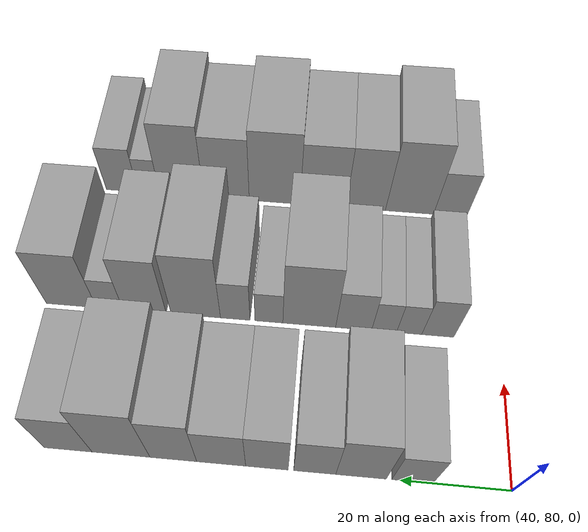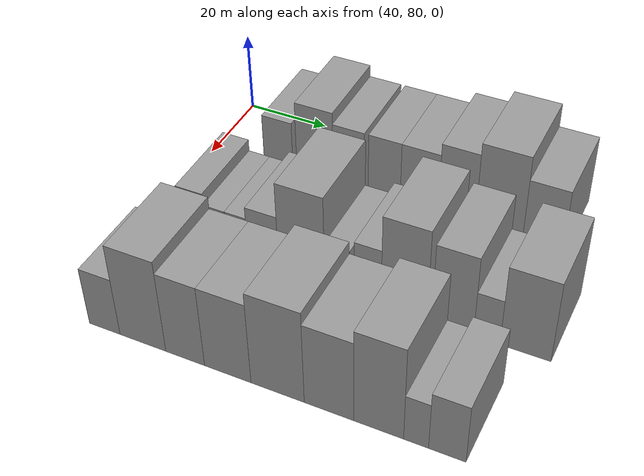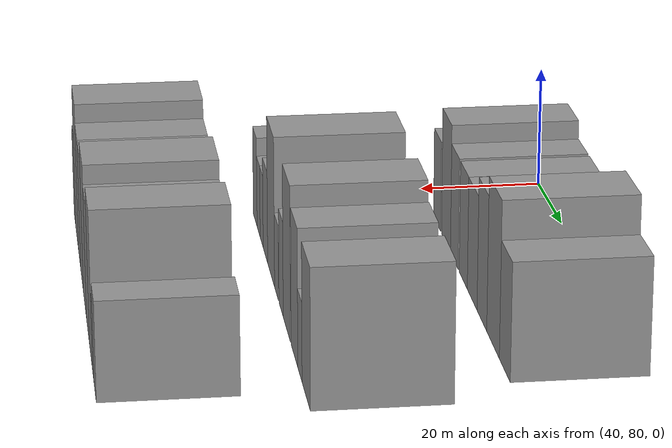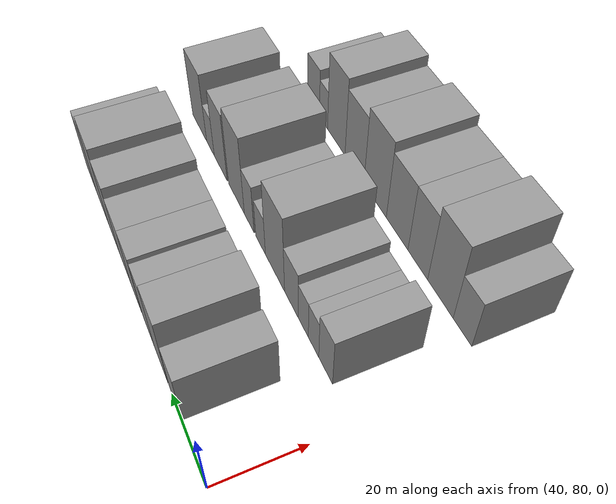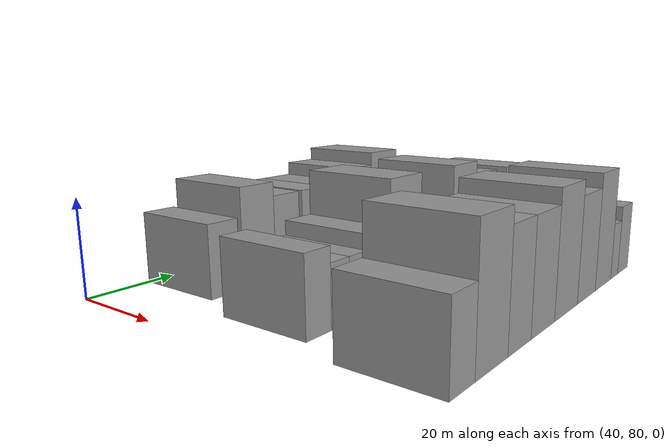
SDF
<sdf version="1.6">
 <world name="default">
  <model name="building_44">
   <static>1</static>
   <pose>50.0000 97.7844 0 0.000000 0.000000 0.000000</pose>
   <link name="link">
    <pose>0 0 7.50 0 0 0</pose>
    <collision name="collision"><geometry><box><size>20.0000 7.3913 15.0000</size></box></geometry></collision>
    <visual name="visual">
     <cast_shadows>0</cast_shadows>
     <geometry><box><size>20.0000 7.3913 15.0000</size></box></geometry>
     <material>
      <script>
       <uri>model://grey_wall/materials/scripts</uri>
       <uri>model://grey_wall/materials/textures</uri>
       <name>vrc/grey_wall</name>
      </script>
     </material>
    </visual>
   </link>
  </model>
  <model name="building_45">
   <static>1</static>
   <pose>50.0000 107.0497 0 0.000000 0.000000 0.000000</pose>
   <link name="link">
    <pose>0 0 10.50 0 0 0</pose>
    <collision name="collision"><geometry><box><size>20.0000 9.1391 21.0000</size></box></geometry></collision>
    <visual name="visual">
     <cast_shadows>0</cast_shadows>
     <geometry><box><size>20.0000 9.1391 21.0000</size></box></geometry>
     <material>
      <script>
       <uri>model://grey_wall/materials/scripts</uri>
       <uri>model://grey_wall/materials/textures</uri>
       <name>vrc/grey_wall</name>
      </script>
     </material>
    </visual>
   </link>
  </model>
  <model name="building_46">
   <static>1</static>
   <pose>50.0000 115.4404 0 0.000000 0.000000 0.000000</pose>
   <link name="link">
    <pose>0 0 9.00 0 0 0</pose>
    <collision name="collision"><geometry><box><size>20.0000 7.6424 18.0000</size></box></geometry></collision>
    <visual name="visual">
     <cast_shadows>0</cast_shadows>
     <geometry><box><size>20.0000 7.6424 18.0000</size></box></geometry>
     <material>
      <script>
       <uri>model://grey_wall/materials/scripts</uri>
       <uri>model://grey_wall/materials/textures</uri>
       <name>vrc/grey_wall</name>
      </script>
     </material>
    </visual>
   </link>
  </model>
  <model name="building_47">
   <static>1</static>
   <pose>50.0000 124.1388 0 0.000000 0.000000 0.000000</pose>
   <link name="link">
    <pose>0 0 9.00 0 0 0</pose>
    <collision name="collision"><geometry><box><size>20.0000 7.7543 18.0000</size></box></geometry></collision>
    <visual name="visual">
     <cast_shadows>0</cast_shadows>
     <geometry><box><size>20.0000 7.7543 18.0000</size></box></geometry>
     <material>
      <script>
       <uri>model://grey_wall/materials/scripts</uri>
       <uri>model://grey_wall/materials/textures</uri>
       <name>vrc/grey_wall</name>
      </script>
     </material>
    </visual>
   </link>
  </model>
  <model name="building_48">
   <static>1</static>
   <pose>50.0000 132.5141 0 0.000000 0.000000 0.000000</pose>
   <link name="link">
    <pose>0 0 9.00 0 0 0</pose>
    <collision name="collision"><geometry><box><size>20.0000 8.9964 18.0000</size></box></geometry></collision>
    <visual name="visual">
     <cast_shadows>0</cast_shadows>
     <geometry><box><size>20.0000 8.9964 18.0000</size></box></geometry>
     <material>
      <script>
       <uri>model://grey_wall/materials/scripts</uri>
       <uri>model://grey_wall/materials/textures</uri>
       <name>vrc/grey_wall</name>
      </script>
     </material>
    </visual>
   </link>
  </model>
  <model name="building_49">
   <static>1</static>
   <pose>50.0000 141.3249 0 0.000000 0.000000 0.000000</pose>
   <link name="link">
    <pose>0 0 10.50 0 0 0</pose>
    <collision name="collision"><geometry><box><size>20.0000 8.6251 21.0000</size></box></geometry></collision>
    <visual name="visual">
     <cast_shadows>0</cast_shadows>
     <geometry><box><size>20.0000 8.6251 21.0000</size></box></geometry>
     <material>
      <script>
       <uri>model://grey_wall/materials/scripts</uri>
       <uri>model://grey_wall/materials/textures</uri>
       <name>vrc/grey_wall</name>
      </script>
     </material>
    </visual>
   </link>
  </model>
  <model name="building_50">
   <static>1</static>
   <pose>50.0000 151.0222 0 0.000000 0.000000 0.000000</pose>
   <link name="link">
    <pose>0 0 12.00 0 0 0</pose>
    <collision name="collision"><geometry><box><size>20.0000 10.7695 24.0000</size></box></geometry></collision>
    <visual name="visual">
     <cast_shadows>0</cast_shadows>
     <geometry><box><size>20.0000 10.7695 24.0000</size></box></geometry>
     <material>
      <script>
       <uri>model://grey_wall/materials/scripts</uri>
       <uri>model://grey_wall/materials/textures</uri>
       <name>vrc/grey_wall</name>
      </script>
     </material>
    </visual>
   </link>
  </model>
  <model name="building_51">
   <static>1</static>
   <pose>50.0000 160.8869 0 0.000000 0.000000 0.000000</pose>
   <link name="link">
    <pose>0 0 9.00 0 0 0</pose>
    <collision name="collision"><geometry><box><size>20.0000 8.9600 18.0000</size></box></geometry></collision>
    <visual name="visual">
     <cast_shadows>0</cast_shadows>
     <geometry><box><size>20.0000 8.9600 18.0000</size></box></geometry>
     <material>
      <script>
       <uri>model://grey_wall/materials/scripts</uri>
       <uri>model://grey_wall/materials/textures</uri>
       <name>vrc/grey_wall</name>
      </script>
     </material>
    </visual>
   </link>
  </model>
  <model name="building_118">
   <static>1</static>
   <pose>79.0000 92.5421 0 0.000000 0.000000 0.000000</pose>
   <link name="link">
    <pose>0 0 7.50 0 0 0</pose>
    <collision name="collision"><geometry><box><size>20.0000 6.3684 15.0000</size></box></geometry></collision>
    <visual name="visual">
     <cast_shadows>0</cast_shadows>
     <geometry><box><size>20.0000 6.3684 15.0000</size></box></geometry>
     <material>
      <script>
       <uri>model://grey_wall/materials/scripts</uri>
       <uri>model://grey_wall/materials/textures</uri>
       <name>vrc/grey_wall</name>
      </script>
     </material>
    </visual>
   </link>
  </model>
  <model name="building_119">
   <static>1</static>
   <pose>79.0000 98.2413 0 0.000000 0.000000 0.000000</pose>
   <link name="link">
    <pose>0 0 6.00 0 0 0</pose>
    <collision name="collision"><geometry><box><size>20.0000 5.0301 12.0000</size></box></geometry></collision>
    <visual name="visual">
     <cast_shadows>0</cast_shadows>
     <geometry><box><size>20.0000 5.0301 12.0000</size></box></geometry>
     <material>
      <script>
       <uri>model://grey_wall/materials/scripts</uri>
       <uri>model://grey_wall/materials/textures</uri>
       <name>vrc/grey_wall</name>
      </script>
     </material>
    </visual>
   </link>
  </model>
  <model name="building_120">
   <static>1</static>
   <pose>79.0000 103.2448 0 0.000000 0.000000 0.000000</pose>
   <link name="link">
    <pose>0 0 6.00 0 0 0</pose>
    <collision name="collision"><geometry><box><size>20.0000 4.9769 12.0000</size></box></geometry></collision>
    <visual name="visual">
     <cast_shadows>0</cast_shadows>
     <geometry><box><size>20.0000 4.9769 12.0000</size></box></geometry>
     <material>
      <script>
       <uri>model://grey_wall/materials/scripts</uri>
       <uri>model://grey_wall/materials/textures</uri>
       <name>vrc/grey_wall</name>
      </script>
     </material>
    </visual>
   </link>
  </model>
  <model name="building_121">
   <static>1</static>
   <pose>79.0000 109.3483 0 0.000000 0.000000 0.000000</pose>
   <link name="link">
    <pose>0 0 7.50 0 0 0</pose>
    <collision name="collision"><geometry><box><size>20.0000 7.2300 15.0000</size></box></geometry></collision>
    <visual name="visual">
     <cast_shadows>0</cast_shadows>
     <geometry><box><size>20.0000 7.2300 15.0000</size></box></geometry>
     <material>
      <script>
       <uri>model://grey_wall/materials/scripts</uri>
       <uri>model://grey_wall/materials/textures</uri>
       <name>vrc/grey_wall</name>
      </script>
     </material>
    </visual>
   </link>
  </model>
  <model name="building_122">
   <static>1</static>
   <pose>79.0000 118.2771 0 0.000000 0.000000 0.000000</pose>
   <link name="link">
    <pose>0 0 12.00 0 0 0</pose>
    <collision name="collision"><geometry><box><size>20.0000 10.6277 24.0000</size></box></geometry></collision>
    <visual name="visual">
     <cast_shadows>0</cast_shadows>
     <geometry><box><size>20.0000 10.6277 24.0000</size></box></geometry>
     <material>
      <script>
       <uri>model://grey_wall/materials/scripts</uri>
       <uri>model://grey_wall/materials/textures</uri>
       <name>vrc/grey_wall</name>
      </script>
     </material>
    </visual>
   </link>
  </model>
  <model name="building_123">
   <static>1</static>
   <pose>79.0000 126.4163 0 0.000000 0.000000 0.000000</pose>
   <link name="link">
    <pose>0 0 6.00 0 0 0</pose>
    <collision name="collision"><geometry><box><size>20.0000 5.6508 12.0000</size></box></geometry></collision>
    <visual name="visual">
     <cast_shadows>0</cast_shadows>
     <geometry><box><size>20.0000 5.6508 12.0000</size></box></geometry>
     <material>
      <script>
       <uri>model://grey_wall/materials/scripts</uri>
       <uri>model://grey_wall/materials/textures</uri>
       <name>vrc/grey_wall</name>
      </script>
     </material>
    </visual>
   </link>
  </model>
  <model name="building_124">
   <static>1</static>
   <pose>79.0000 133.2450 0 0.000000 0.000000 0.000000</pose>
   <link name="link">
    <pose>0 0 7.50 0 0 0</pose>
    <collision name="collision"><geometry><box><size>20.0000 6.0065 15.0000</size></box></geometry></collision>
    <visual name="visual">
     <cast_shadows>0</cast_shadows>
     <geometry><box><size>20.0000 6.0065 15.0000</size></box></geometry>
     <material>
      <script>
       <uri>model://grey_wall/materials/scripts</uri>
       <uri>model://grey_wall/materials/textures</uri>
       <name>vrc/grey_wall</name>
      </script>
     </material>
    </visual>
   </link>
  </model>
  <model name="building_125">
   <static>1</static>
   <pose>79.0000 141.2946 0 0.000000 0.000000 0.000000</pose>
   <link name="link">
    <pose>0 0 12.00 0 0 0</pose>
    <collision name="collision"><geometry><box><size>20.0000 10.0927 24.0000</size></box></geometry></collision>
    <visual name="visual">
     <cast_shadows>0</cast_shadows>
     <geometry><box><size>20.0000 10.0927 24.0000</size></box></geometry>
     <material>
      <script>
       <uri>model://grey_wall/materials/scripts</uri>
       <uri>model://grey_wall/materials/textures</uri>
       <name>vrc/grey_wall</name>
      </script>
     </material>
    </visual>
   </link>
  </model>
  <model name="building_126">
   <static>1</static>
   <pose>79.0000 151.7759 0 0.000000 0.000000 0.000000</pose>
   <link name="link">
    <pose>0 0 10.50 0 0 0</pose>
    <collision name="collision"><geometry><box><size>20.0000 8.8700 21.0000</size></box></geometry></collision>
    <visual name="visual">
     <cast_shadows>0</cast_shadows>
     <geometry><box><size>20.0000 8.8700 21.0000</size></box></geometry>
     <material>
      <script>
       <uri>model://grey_wall/materials/scripts</uri>
       <uri>model://grey_wall/materials/textures</uri>
       <name>vrc/grey_wall</name>
      </script>
     </material>
    </visual>
   </link>
  </model>
  <model name="building_127">
   <static>1</static>
   <pose>79.0000 158.9594 0 0.000000 0.000000 0.000000</pose>
   <link name="link">
    <pose>0 0 6.00 0 0 0</pose>
    <collision name="collision"><geometry><box><size>20.0000 5.4968 12.0000</size></box></geometry></collision>
    <visual name="visual">
     <cast_shadows>0</cast_shadows>
     <geometry><box><size>20.0000 5.4968 12.0000</size></box></geometry>
     <material>
      <script>
       <uri>model://grey_wall/materials/scripts</uri>
       <uri>model://grey_wall/materials/textures</uri>
       <name>vrc/grey_wall</name>
      </script>
     </material>
    </visual>
   </link>
  </model>
  <model name="building_128">
   <static>1</static>
   <pose>79.0000 166.9218 0 0.000000 0.000000 0.000000</pose>
   <link name="link">
    <pose>0 0 10.50 0 0 0</pose>
    <collision name="collision"><geometry><box><size>20.0000 10.4281 21.0000</size></box></geometry></collision>
    <visual name="visual">
     <cast_shadows>0</cast_shadows>
     <geometry><box><size>20.0000 10.4281 21.0000</size></box></geometry>
     <material>
      <script>
       <uri>model://grey_wall/materials/scripts</uri>
       <uri>model://grey_wall/materials/textures</uri>
       <name>vrc/grey_wall</name>
      </script>
     </material>
    </visual>
   </link>
  </model>
  <model name="building_194">
   <static>1</static>
   <pose>108.0000 89.1507 0 0.000000 0.000000 0.000000</pose>
   <link name="link">
    <pose>0 0 7.50 0 0 0</pose>
    <collision name="collision"><geometry><box><size>20.0000 7.2178 15.0000</size></box></geometry></collision>
    <visual name="visual">
     <cast_shadows>0</cast_shadows>
     <geometry><box><size>20.0000 7.2178 15.0000</size></box></geometry>
     <material>
      <script>
       <uri>model://grey_wall/materials/scripts</uri>
       <uri>model://grey_wall/materials/textures</uri>
       <name>vrc/grey_wall</name>
      </script>
     </material>
    </visual>
   </link>
  </model>
  <model name="building_195">
   <static>1</static>
   <pose>108.0000 98.0377 0 0.000000 0.000000 0.000000</pose>
   <link name="link">
    <pose>0 0 12.00 0 0 0</pose>
    <collision name="collision"><geometry><box><size>20.0000 10.5561 24.0000</size></box></geometry></collision>
    <visual name="visual">
     <cast_shadows>0</cast_shadows>
     <geometry><box><size>20.0000 10.5561 24.0000</size></box></geometry>
     <material>
      <script>
       <uri>model://grey_wall/materials/scripts</uri>
       <uri>model://grey_wall/materials/textures</uri>
       <name>vrc/grey_wall</name>
      </script>
     </material>
    </visual>
   </link>
  </model>
  <model name="building_196">
   <static>1</static>
   <pose>108.0000 107.6641 0 0.000000 0.000000 0.000000</pose>
   <link name="link">
    <pose>0 0 10.50 0 0 0</pose>
    <collision name="collision"><geometry><box><size>20.0000 8.6967 21.0000</size></box></geometry></collision>
    <visual name="visual">
     <cast_shadows>0</cast_shadows>
     <geometry><box><size>20.0000 8.6967 21.0000</size></box></geometry>
     <material>
      <script>
       <uri>model://grey_wall/materials/scripts</uri>
       <uri>model://grey_wall/materials/textures</uri>
       <name>vrc/grey_wall</name>
      </script>
     </material>
    </visual>
   </link>
  </model>
  <model name="building_197">
   <static>1</static>
   <pose>108.0000 117.0814 0 0.000000 0.000000 0.000000</pose>
   <link name="link">
    <pose>0 0 10.50 0 0 0</pose>
    <collision name="collision"><geometry><box><size>20.0000 10.1379 21.0000</size></box></geometry></collision>
    <visual name="visual">
     <cast_shadows>0</cast_shadows>
     <geometry><box><size>20.0000 10.1379 21.0000</size></box></geometry>
     <material>
      <script>
       <uri>model://grey_wall/materials/scripts</uri>
       <uri>model://grey_wall/materials/textures</uri>
       <name>vrc/grey_wall</name>
      </script>
     </material>
    </visual>
   </link>
  </model>
  <model name="building_198">
   <static>1</static>
   <pose>108.0000 127.7948 0 0.000000 0.000000 0.000000</pose>
   <link name="link">
    <pose>0 0 12.00 0 0 0</pose>
    <collision name="collision"><geometry><box><size>20.0000 11.2889 24.0000</size></box></geometry></collision>
    <visual name="visual">
     <cast_shadows>0</cast_shadows>
     <geometry><box><size>20.0000 11.2889 24.0000</size></box></geometry>
     <material>
      <script>
       <uri>model://grey_wall/materials/scripts</uri>
       <uri>model://grey_wall/materials/textures</uri>
       <name>vrc/grey_wall</name>
      </script>
     </material>
    </visual>
   </link>
  </model>
  <model name="building_199">
   <static>1</static>
   <pose>108.0000 138.5087 0 0.000000 0.000000 0.000000</pose>
   <link name="link">
    <pose>0 0 10.50 0 0 0</pose>
    <collision name="collision"><geometry><box><size>20.0000 10.1390 21.0000</size></box></geometry></collision>
    <visual name="visual">
     <cast_shadows>0</cast_shadows>
     <geometry><box><size>20.0000 10.1390 21.0000</size></box></geometry>
     <material>
      <script>
       <uri>model://grey_wall/materials/scripts</uri>
       <uri>model://grey_wall/materials/textures</uri>
       <name>vrc/grey_wall</name>
      </script>
     </material>
    </visual>
   </link>
  </model>
  <model name="building_200">
   <static>1</static>
   <pose>108.0000 148.5646 0 0.000000 0.000000 0.000000</pose>
   <link name="link">
    <pose>0 0 12.00 0 0 0</pose>
    <collision name="collision"><geometry><box><size>20.0000 9.9728 24.0000</size></box></geometry></collision>
    <visual name="visual">
     <cast_shadows>0</cast_shadows>
     <geometry><box><size>20.0000 9.9728 24.0000</size></box></geometry>
     <material>
      <script>
       <uri>model://grey_wall/materials/scripts</uri>
       <uri>model://grey_wall/materials/textures</uri>
       <name>vrc/grey_wall</name>
      </script>
     </material>
    </visual>
   </link>
  </model>
  <model name="building_201">
   <static>1</static>
   <pose>108.0000 155.9838 0 0.000000 0.000000 0.000000</pose>
   <link name="link">
    <pose>0 0 6.00 0 0 0</pose>
    <collision name="collision"><geometry><box><size>20.0000 4.8656 12.0000</size></box></geometry></collision>
    <visual name="visual">
     <cast_shadows>0</cast_shadows>
     <geometry><box><size>20.0000 4.8656 12.0000</size></box></geometry>
     <material>
      <script>
       <uri>model://grey_wall/materials/scripts</uri>
       <uri>model://grey_wall/materials/textures</uri>
       <name>vrc/grey_wall</name>
      </script>
     </material>
    </visual>
   </link>
  </model>
  <model name="building_202">
   <static>1</static>
   <pose>108.0000 162.0079 0 0.000000 0.000000 0.000000</pose>
   <link name="link">
    <pose>0 0 7.50 0 0 0</pose>
    <collision name="collision"><geometry><box><size>20.0000 7.1827 15.0000</size></box></geometry></collision>
    <visual name="visual">
     <cast_shadows>0</cast_shadows>
     <geometry><box><size>20.0000 7.1827 15.0000</size></box></geometry>
     <material>
      <script>
       <uri>model://grey_wall/materials/scripts</uri>
       <uri>model://grey_wall/materials/textures</uri>
       <name>vrc/grey_wall</name>
      </script>
     </material>
    </visual>
   </link>
  </model>
 </world>
</sdf>
